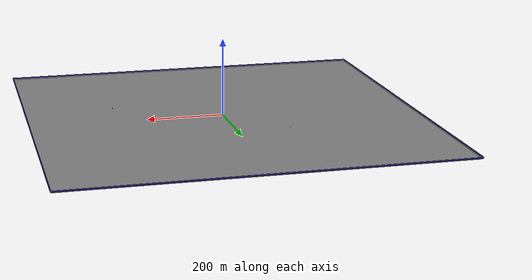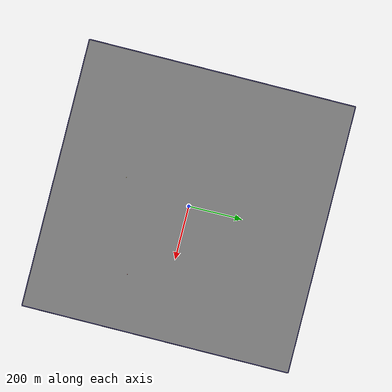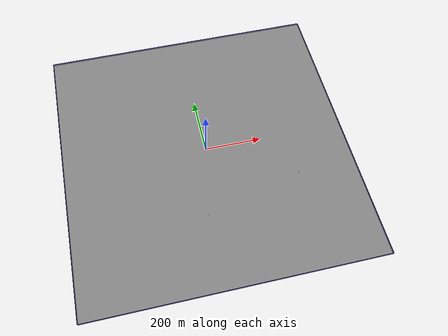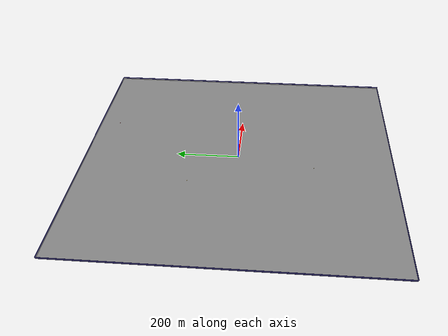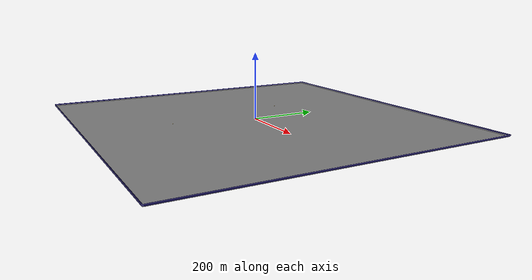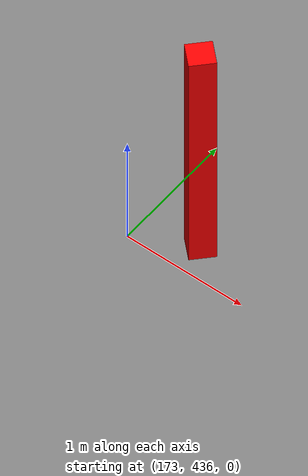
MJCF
<mujoco model="unnamed_model">
  <default>
    <default class="/" />
    <default class="border/" />
    <default class="border_1/" />
    <default class="border_2/" />
    <default class="border_3/" />
    <default class="agentplaceholder/" />
    <default class="placeholder_box/" />
    <default class="stone0/" />
    <default class="stone1/" />
    <default class="tree/" />
    <default class="tree_1/" />
  </default>
  <worldbody>
    <body name="border/">
      <body name="border/border" pos="0 501 2">
        <geom name="border/border_geom" class="border/" type="box" size="500 1 2" rgba="0.035000000000000003 0.016 0.28999999999999998 1" />
      </body>
    </body>
    <body name="border_1/">
      <body name="border_1/border" pos="0 -501 2">
        <geom name="border_1/border_geom" class="border_1/" type="box" size="500 1 2" rgba="0.035000000000000003 0.016 0.28999999999999998 1" />
      </body>
    </body>
    <body name="border_2/">
      <body name="border_2/border" pos="501 0 2">
        <geom name="border_2/border_geom" class="border_2/" type="box" size="1 500 2" rgba="0.035000000000000003 0.016 0.28999999999999998 1" />
      </body>
    </body>
    <body name="border_3/">
      <body name="border_3/border" pos="-501 0 2">
        <geom name="border_3/border_geom" class="border_3/" type="box" size="1 500 2" rgba="0.035000000000000003 0.016 0.28999999999999998 1" />
      </body>
    </body>
    <body euler="0 0 79.471070601285362" name="agentplaceholder/">
      <joint name="agentplaceholder/boxagent_freeJoint/" class="/" type="free" />
      <body name="agentplaceholder/agentplaceholder" pos="-250 0 3" euler="0 0 0">
        <geom name="agentplaceholder/boxagent_geom" class="agentplaceholder/" type="box" size="0.5 0.5 0.5" rgba="0.94899999999999995 0.74509999999999998 0.1333 1" euler="0 0 0" />
      </body>
    </body>
    <body name="placeholder_box/">
      <body name="placeholder_box/placeholder_box" pos="-138.05275 149.11879999999996 0.5" euler="0 0 5.1836314743544278">
        <geom name="placeholder_box/box_geom" class="placeholder_box/" type="box" size="0.5 0.5 0.5" rgba="0.94899999999999995 0.74509999999999998 0.1333 1" euler="0 0 0" />
      </body>
    </body>
    <body name="stone0/">
      <body name="stone0/stone0" pos="270.78199999999998 -125.45709999999997 0.10000000000000001" euler="0 0 71.79257018187451">
        <geom name="stone0/stone_geom" class="stone0/" type="box" size="0.10000000000000001 0.10000000000000001 2" rgba="1 0 0 1" />
      </body>
    </body>
    <body name="stone1/">
      <body name="stone1/stone1" pos="296.6875 -155.88650000000001 0.10000000000000001" euler="0 0 65.708267805464828">
        <geom name="stone1/stone_geom" class="stone1/" type="box" size="0.10000000000000001 0.10000000000000001 2" rgba="1 0 0 1" />
      </body>
    </body>
    <body name="tree/">
      <body name="tree/tree" pos="280.31015000000002 15.51520000000005 0.10000000000000001" euler="0 0 -11.967912558978355">
        <geom name="tree/tree_geom" class="tree/" type="box" size="0.10000000000000001 0.10000000000000001 2" rgba="1 0 0 1" />
      </body>
    </body>
    <body name="tree_1/">
      <body name="tree_1/tree" pos="173.45690000000002 436.23770000000002 0.10000000000000001" euler="0 0 136.6794338439172">
        <geom name="tree_1/tree_geom" class="tree_1/" type="box" size="0.10000000000000001 0.10000000000000001 2" rgba="1 0 0 1" />
      </body>
    </body>
    <geom name="base_plane" class="/" type="plane" size="500 500 0.10000000000000001" />
  </worldbody>
</mujoco>
